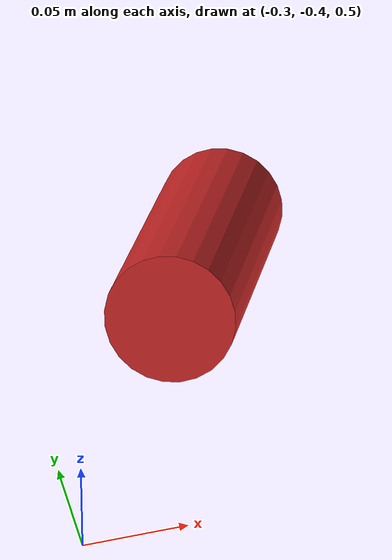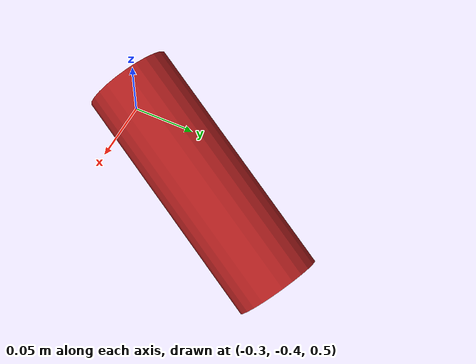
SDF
<sdf version="1.5">
  <model name="stickbot_weight_left">
    <pose>-0.22 -0.3 0.57 0.811662 0.939415 -1.065011</pose>
    <static>false</static>
    <link name="cylinder">
        <visual name="visual">
            <geometry>
                <cylinder>
                    <radius>0.03</radius>
                    <length>0.17</length>
                </cylinder>
            </geometry>
            <material>
                <script>
                    <uri>file://media/materials/scripts/gazebo.material</uri>
                    <name>Gazebo/Red</name>
                </script>
        </material>
        </visual>
        <inertial>
            <mass>7</mass>
        </inertial>
    </link>
    <plugin name="link_attacher" filename='libgazebo_yarp_linkattacher.so'>
        <yarpConfigurationFile>model://iCub/conf_stickBot/link_attacher/linkattacher_weight_left.ini</yarpConfigurationFile>
    </plugin>
  </model>
</sdf>
